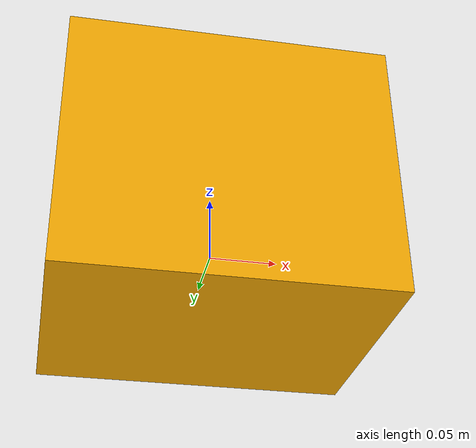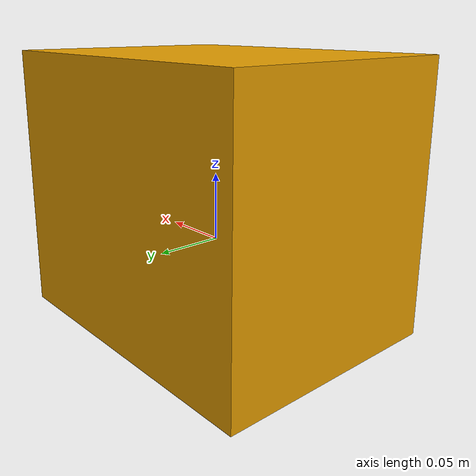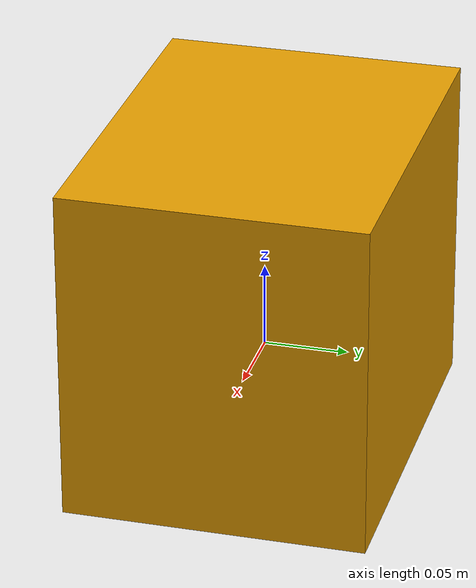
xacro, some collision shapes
<?xml version="1.0"?>
<robot xmlns:xacro="http://www.ros.org/wiki/xacro" name="cobra">
	<xacro:property name="wheel_mass"   value="0.23126"/>
	<xacro:property name="wheel_width"  value="0.02000"/>
	<xacro:property name="wheel_radius" value="0.03726"/>

	<xacro:property name="body_mass"   value="2.375"/>
	<xacro:property name="body_width"  value="0.179"/>
	<xacro:property name="body_height" value="0.200"/>
	<xacro:property name="body_length" value="0.23525"/>
	<xacro:property name="body_center_z" value="${wheel_radius}"/>

	<xacro:property name="left_front_anchor"  value=" 0.0795  0.0770 ${wheel_radius}"/>
	<xacro:property name="left_rear_anchor"   value="-0.0795  0.0770 ${wheel_radius}"/>
	<xacro:property name="right_front_anchor" value=" 0.0795 -0.0770 ${wheel_radius}"/>
	<xacro:property name="right_rear_anchor"  value="-0.0795 -0.0770 ${wheel_radius}"/>

	<!-- ======================== Base link (robot body) ======================== -->
	<link name="base_footprint">
		<visual>
			<origin xyz="0 0 ${body_center_z}" rpy="3.14159 3.14159 -1.5708"/>
			<geometry>
				<mesh filename="package://description/meshes/cobra_body.dae" scale="0.001 0.001 0.001"/>
			</geometry>
		</visual>

		<collision>
			<origin xyz="0 0 ${body_center_z}" rpy="0 0 0"/>
			<geometry>
				<box size="${body_length} ${body_width} ${body_height}"/>
			</geometry>
		</collision>

		<inertial>
			<origin xyz="0 0 ${body_center_z}" rpy="0 0 0"/>
			<mass value="${body_mass}"/>
			<inertia
				ixx="0.008411458333333333" ixy="0" ixz="0"
				iyy="0.017614583333333333" iyz="0"
				izz="0.011736458333333333"/>
		</inertial>
	</link>

	<!-- ======================== Base cam (robot camera) ======================== -->

	<!-- ======================== Base scan (lidar) ======================== -->
	<link name="base_scan"/>
	<joint name="scan_joint" type="fixed">
		<parent link="base_footprint"/>
		<child link="base_scan"/>
		<origin xyz="0.068376 -0.00385 0.11971" rpy="0 0 0"/>
	</joint>

	<!-- ======================== Wheel template ======================== -->
	<xacro:macro name="wheel" params="name side">
		<link name="${name}">
			<visual>
				<origin xyz="0 0 0" rpy="0 0 0"/>
				<geometry>
					<mesh filename="package://description/meshes/cobra_wheel_${side}.stl" scale="0.001 0.001 0.001"/>
				</geometry>
				<material name="wheel_material">
					<color rgba="0.05 0.05 0.05 1.0"/>
				</material>
			</visual>

			<collision>
				<origin xyz="0 0 0" rpy="1.5708 0 0"/>
				<geometry>
					<cylinder radius="${wheel_radius}" length="${wheel_width}"/>
				</geometry>
			</collision>

			<inertial>
				<origin xyz="0 0 0" rpy="0 0 0"/>
				<mass value="${wheel_mass}"/>
				<inertia
					ixx="8.973285416666667e-05" ixy="0" ixz="0"
					iyy="1.6373237499999998e-04" iyz="0"
					izz="8.973285416666667e-05"/>
			</inertial>
		</link>
	</xacro:macro>

	<xacro:macro name="wheel_joint" params="jname child xyz rpy:='0 0 0'">
		<joint name="${jname}" type="continuous">
			<parent link="base_footprint"/>
			<child  link="${child}"/>
			<origin xyz="${xyz}" rpy="${rpy}"/>
			<axis xyz="0 1 0"/>
		</joint>
	</xacro:macro>

	<!-- ======================== Wheels ======================== -->
	<xacro:wheel name="left_rear_wheel" side="left"/>
	<xacro:wheel_joint jname="left_rear_wheel_joint" child="left_rear_wheel" xyz="${left_rear_anchor}" rpy="0 -1.5708 3.14159"/>

	<xacro:wheel name="left_front_wheel" side="left"/>
	<xacro:wheel_joint jname="left_front_wheel_joint" child="left_front_wheel" xyz="${left_front_anchor}" rpy="0 -1.5708 3.14159"/>

	<xacro:wheel name="right_rear_wheel" side="right"/>
	<xacro:wheel_joint jname="right_rear_wheel_joint" child="right_rear_wheel" xyz="${right_rear_anchor}" rpy="0 0 0"/>

	<xacro:wheel name="right_front_wheel" side="right"/>
	<xacro:wheel_joint jname="right_front_wheel_joint" child="right_front_wheel" xyz="${right_front_anchor}" rpy="0 0 0"/>
</robot>
